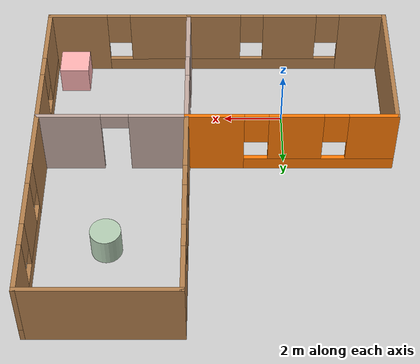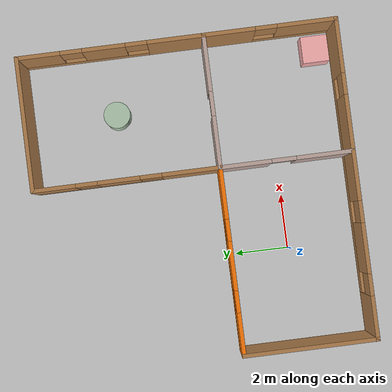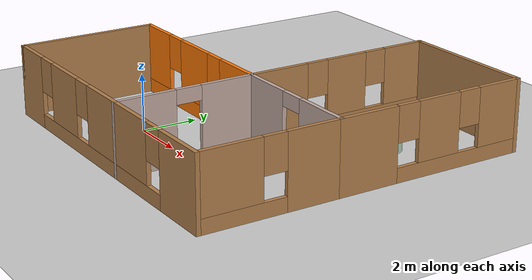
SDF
<sdf version="1.7">
 <world name="default">
  <light name="sun" type="directional">
   <pose>0 0 10 0 -0 0</pose>
   <diffuse>0.8 0.8 0.8 1</diffuse>
   <specular>0.2 0.2 0.2 1</specular>
   <attenuation>
    <range>1000</range>
    <constant>0.9</constant>
    <linear>0.01</linear>
    <quadratic>0.001</quadratic>
   </attenuation>
   <direction>-0.5 0.1 -0.9</direction>
   <spot><inner_angle>0</inner_angle><outer_angle>0</outer_angle><falloff>0</falloff></spot>
  </light>
  <model name="ground_plane">
   <static>1</static>
   <link name="link">
    <collision name="collision">
     <geometry><plane><normal>0 0 1</normal><size>100 100</size></plane></geometry>
     <surface>
      <contact><collide_bitmask>65535</collide_bitmask></contact>
      <friction><ode><mu>100</mu><mu2>50</mu2></ode></friction>
     </surface>
    </collision>
    <visual name="visual">
     <cast_shadows>0</cast_shadows>
     <geometry><plane><normal>0 0 1</normal><size>100 100</size></plane></geometry>
     <material>
      <script><uri>file://media/materials/scripts/gazebo.material</uri><name>Gazebo/Grey</name></script>
     </material>
    </visual>
   </link>
  </model>
  <gravity>0 0 -9.8</gravity>
  <magnetic_field>6e-06 2.3e-05 -4.2e-05</magnetic_field>
  <atmosphere type="adiabatic"/>
  <physics type="ode">
   <max_step_size>0.001</max_step_size>
   <real_time_factor>1</real_time_factor>
   <real_time_update_rate>1000</real_time_update_rate>
  </physics>
  <scene><ambient>0.4 0.4 0.4 1</ambient><background>0.7 0.7 0.7 1</background><shadows>1</shadows></scene>
  <spherical_coordinates>
   <surface_model>EARTH_WGS84</surface_model>
   <latitude_deg>0</latitude_deg>
   <longitude_deg>0</longitude_deg>
   <elevation>0</elevation>
   <heading_deg>0</heading_deg>
  </spherical_coordinates>
  <model name="home2">
   <pose>2.2501 3.23627 0 0 -0 0</pose>
   <link name="Wall_12">
    <pose>-2.425 -1 0 0 -0 3.14159</pose>
    <visual name="Wall_12_Visual_0">
     <pose>-2.52053 0 1.25 0 -0 0</pose>
     <geometry><box><size>1.95895 0.15 2.5</size></box></geometry>
     <material>
      <script><uri>file://media/materials/scripts/gazebo.material</uri><name>Gazebo/Grey</name></script>
      <ambient>0.996078 0.47451 0.0196078 1</ambient>
     </material>
     <meta><layer>0</layer></meta>
    </visual>
    <collision name="Wall_12_Collision_0">
     <geometry><box><size>1.95895 0.15 2.5</size></box></geometry>
     <pose>-2.52053 0 1.25 0 -0 0</pose>
    </collision>
    <visual name="Wall_12_Visual_1">
     <pose>0.979473 0 0.25 0 -0 0</pose>
     <geometry><box><size>5.04105 0.15 0.5</size></box></geometry>
     <material>
      <script><uri>file://media/materials/scripts/gazebo.material</uri><name>Gazebo/Grey</name></script>
      <ambient>0.996078 0.47451 0.0196078 1</ambient>
     </material>
     <meta><layer>0</layer></meta>
    </visual>
    <collision name="Wall_12_Collision_1">
     <geometry><box><size>5.04105 0.15 0.5</size></box></geometry>
     <pose>0.979473 0 0.25 0 -0 0</pose>
    </collision>
    <visual name="Wall_12_Visual_2">
     <pose>0.15903 0 1.5 0 -0 0</pose>
     <geometry><box><size>1.80017 0.15 2</size></box></geometry>
     <material>
      <script><uri>file://media/materials/scripts/gazebo.material</uri><name>Gazebo/Grey</name></script>
      <ambient>0.996078 0.47451 0.0196078 1</ambient>
     </material>
     <meta><layer>0</layer></meta>
    </visual>
    <collision name="Wall_12_Collision_2">
     <geometry><box><size>1.80017 0.15 2</size></box></geometry>
     <pose>0.15903 0 1.5 0 -0 0</pose>
    </collision>
    <visual name="Wall_12_Visual_3">
     <pose>2.67956 0 1.5 0 -0 0</pose>
     <geometry><box><size>1.64088 0.15 2</size></box></geometry>
     <material>
      <script><uri>file://media/materials/scripts/gazebo.material</uri><name>Gazebo/Grey</name></script>
      <ambient>0.996078 0.47451 0.0196078 1</ambient>
     </material>
     <meta><layer>0</layer></meta>
    </visual>
    <collision name="Wall_12_Collision_3">
     <geometry><box><size>1.64088 0.15 2</size></box></geometry>
     <pose>2.67956 0 1.5 0 -0 0</pose>
    </collision>
    <visual name="Wall_12_Visual_4">
     <pose>-1.14105 0 1.9 0 -0 0</pose>
     <geometry><box><size>0.8 0.15 1.2</size></box></geometry>
     <material>
      <script><uri>file://media/materials/scripts/gazebo.material</uri><name>Gazebo/Grey</name></script>
      <ambient>0.996078 0.47451 0.0196078 1</ambient>
     </material>
     <meta><layer>0</layer></meta>
    </visual>
    <collision name="Wall_12_Collision_4">
     <geometry><box><size>0.8 0.15 1.2</size></box></geometry>
     <pose>-1.14105 0 1.9 0 -0 0</pose>
    </collision>
    <visual name="Wall_12_Visual_5">
     <pose>1.45911 0 1.9 0 -0 0</pose>
     <geometry><box><size>0.8 0.15 1.2</size></box></geometry>
     <material>
      <script><uri>file://media/materials/scripts/gazebo.material</uri><name>Gazebo/Grey</name></script>
      <ambient>0.996078 0.47451 0.0196078 1</ambient>
     </material>
     <meta><layer>0</layer></meta>
    </visual>
    <collision name="Wall_12_Collision_5">
     <geometry><box><size>0.8 0.15 1.2</size></box></geometry>
     <pose>1.45911 0 1.9 0 -0 0</pose>
    </collision>
   </link>
   <link name="Wall_13">
    <collision name="Wall_13_Collision">
     <geometry><box><size>5 0.15 2.5</size></box></geometry>
     <pose>0 0 1.25 0 -0 0</pose>
    </collision>
    <visual name="Wall_13_Visual">
     <pose>0 0 1.25 0 -0 0</pose>
     <geometry><box><size>5 0.15 2.5</size></box></geometry>
     <material>
      <script><uri>file://media/materials/scripts/gazebo.material</uri><name>Gazebo/Wood</name></script>
      <ambient>0.996078 0.47451 0.0196078 1</ambient>
     </material>
     <meta><layer>0</layer></meta>
    </visual>
    <pose>-5.85 -3.425 0 0 -0 -1.5708</pose>
   </link>
   <link name="Wall_14">
    <pose>-2.425 -5.85 0 0 -0 0</pose>
    <visual name="Wall_14_Visual_0">
     <pose>-2.67956 0 1.25 0 -0 0</pose>
     <geometry><box><size>1.64088 0.15 2.5</size></box></geometry>
     <material>
      <script><uri>file://media/materials/scripts/gazebo.material</uri><name>Gazebo/Wood</name></script>
      <ambient>0.996078 0.47451 0.0196078 1</ambient>
     </material>
     <meta><layer>0</layer></meta>
    </visual>
    <collision name="Wall_14_Collision_0">
     <geometry><box><size>1.64088 0.15 2.5</size></box></geometry>
     <pose>-2.67956 0 1.25 0 -0 0</pose>
    </collision>
    <visual name="Wall_14_Visual_1">
     <pose>0.820442 0 0.25 0 -0 0</pose>
     <geometry><box><size>5.35912 0.15 0.5</size></box></geometry>
     <material>
      <script><uri>file://media/materials/scripts/gazebo.material</uri><name>Gazebo/Wood</name></script>
      <ambient>0.996078 0.47451 0.0196078 1</ambient>
     </material>
     <meta><layer>0</layer></meta>
    </visual>
    <collision name="Wall_14_Collision_1">
     <geometry><box><size>5.35912 0.15 0.5</size></box></geometry>
     <pose>0.820442 0 0.25 0 -0 0</pose>
    </collision>
    <visual name="Wall_14_Visual_2">
     <pose>-0.12844 0 1.5 0 -0 0</pose>
     <geometry><box><size>1.86135 0.15 2</size></box></geometry>
     <material>
      <script><uri>file://media/materials/scripts/gazebo.material</uri><name>Gazebo/Wood</name></script>
      <ambient>0.996078 0.47451 0.0196078 1</ambient>
     </material>
     <meta><layer>0</layer></meta>
    </visual>
    <collision name="Wall_14_Collision_2">
     <geometry><box><size>1.86135 0.15 2</size></box></geometry>
     <pose>-0.12844 0 1.5 0 -0 0</pose>
    </collision>
    <visual name="Wall_14_Visual_3">
     <pose>2.55112 0 1.5 0 -0 0</pose>
     <geometry><box><size>1.89776 0.15 2</size></box></geometry>
     <material>
      <script><uri>file://media/materials/scripts/gazebo.material</uri><name>Gazebo/Wood</name></script>
      <ambient>0.996078 0.47451 0.0196078 1</ambient>
     </material>
     <meta><layer>0</layer></meta>
    </visual>
    <collision name="Wall_14_Collision_3">
     <geometry><box><size>1.89776 0.15 2</size></box></geometry>
     <pose>2.55112 0 1.5 0 -0 0</pose>
    </collision>
    <visual name="Wall_14_Visual_4">
     <pose>-1.45911 0 1.9 0 -0 0</pose>
     <geometry><box><size>0.8 0.15 1.2</size></box></geometry>
     <material>
      <script><uri>file://media/materials/scripts/gazebo.material</uri><name>Gazebo/Wood</name></script>
      <ambient>0.996078 0.47451 0.0196078 1</ambient>
     </material>
     <meta><layer>0</layer></meta>
    </visual>
    <collision name="Wall_14_Collision_4">
     <geometry><box><size>0.8 0.15 1.2</size></box></geometry>
     <pose>-1.45911 0 1.9 0 -0 0</pose>
    </collision>
    <visual name="Wall_14_Visual_5">
     <pose>1.20223 0 1.9 0 -0 0</pose>
     <geometry><box><size>0.8 0.15 1.2</size></box></geometry>
     <material>
      <script><uri>file://media/materials/scripts/gazebo.material</uri><name>Gazebo/Wood</name></script>
      <ambient>0.996078 0.47451 0.0196078 1</ambient>
     </material>
     <meta><layer>0</layer></meta>
    </visual>
    <collision name="Wall_14_Collision_5">
     <geometry><box><size>0.8 0.15 1.2</size></box></geometry>
     <pose>1.20223 0 1.9 0 -0 0</pose>
    </collision>
   </link>
   <link name="Wall_17">
    <pose>1 -3.425 0 0 -0 1.5708</pose>
    <visual name="Wall_17_Visual_0">
     <pose>-1.42691 0 1.25 0 -0 0</pose>
     <geometry><box><size>2.14619 0.15 2.5</size></box></geometry>
     <material>
      <script><uri>file://media/materials/scripts/gazebo.material</uri><name>Gazebo/Grey</name></script>
      <ambient>0.760784 0.662745 0.627451 1</ambient>
     </material>
     <meta><layer>0</layer></meta>
    </visual>
    <collision name="Wall_17_Collision_0">
     <geometry><box><size>2.14619 0.15 2.5</size></box></geometry>
     <pose>-1.42691 0 1.25 0 -0 0</pose>
    </collision>
    <visual name="Wall_17_Visual_1">
     <pose>1.5231 0 1.25 0 -0 0</pose>
     <geometry><box><size>1.95381 0.15 2.5</size></box></geometry>
     <material>
      <script><uri>file://media/materials/scripts/gazebo.material</uri><name>Gazebo/Grey</name></script>
      <ambient>0.760784 0.662745 0.627451 1</ambient>
     </material>
     <meta><layer>0</layer></meta>
    </visual>
    <collision name="Wall_17_Collision_1">
     <geometry><box><size>1.95381 0.15 2.5</size></box></geometry>
     <pose>1.5231 0 1.25 0 -0 0</pose>
    </collision>
    <visual name="Wall_17_Visual_2">
     <pose>0.09619 0 2.25 0 -0 0</pose>
     <geometry><box><size>0.9 0.15 0.5</size></box></geometry>
     <material>
      <script><uri>file://media/materials/scripts/gazebo.material</uri><name>Gazebo/Grey</name></script>
      <ambient>0.760784 0.662745 0.627451 1</ambient>
     </material>
     <meta><layer>0</layer></meta>
    </visual>
    <collision name="Wall_17_Collision_2">
     <geometry><box><size>0.9 0.15 0.5</size></box></geometry>
     <pose>0.09619 0 2.25 0 -0 0</pose>
    </collision>
   </link>
   <link name="Wall_18">
    <pose>3.425 -1 0 0 -0 0</pose>
    <visual name="Wall_18_Visual_0">
     <pose>-1.51991 0 1.25 0 -0 0</pose>
     <geometry><box><size>1.96018 0.15 2.5</size></box></geometry>
     <material>
      <script><uri>file://media/materials/scripts/gazebo.material</uri><name>Gazebo/Grey</name></script>
      <ambient>0.760784 0.662745 0.627451 1</ambient>
     </material>
     <meta><layer>0</layer></meta>
    </visual>
    <collision name="Wall_18_Collision_0">
     <geometry><box><size>1.96018 0.15 2.5</size></box></geometry>
     <pose>-1.51991 0 1.25 0 -0 0</pose>
    </collision>
    <visual name="Wall_18_Visual_1">
     <pose>1.43009 0 1.25 0 -0 0</pose>
     <geometry><box><size>2.13982 0.15 2.5</size></box></geometry>
     <material>
      <script><uri>file://media/materials/scripts/gazebo.material</uri><name>Gazebo/Grey</name></script>
      <ambient>0.760784 0.662745 0.627451 1</ambient>
     </material>
     <meta><layer>0</layer></meta>
    </visual>
    <collision name="Wall_18_Collision_1">
     <geometry><box><size>2.13982 0.15 2.5</size></box></geometry>
     <pose>1.43009 0 1.25 0 -0 0</pose>
    </collision>
    <visual name="Wall_18_Visual_2">
     <pose>-0.089821 0 2.25 0 -0 0</pose>
     <geometry><box><size>0.9 0.15 0.5</size></box></geometry>
     <material>
      <script><uri>file://media/materials/scripts/gazebo.material</uri><name>Gazebo/Grey</name></script>
      <ambient>0.760784 0.662745 0.627451 1</ambient>
     </material>
     <meta><layer>0</layer></meta>
    </visual>
    <collision name="Wall_18_Collision_2">
     <geometry><box><size>0.9 0.15 0.5</size></box></geometry>
     <pose>-0.089821 0 2.25 0 -0 0</pose>
    </collision>
   </link>
   <link name="Wall_19">
    <pose>5.85 -3.425 0 0 -0 -1.5708</pose>
    <visual name="Wall_19_Visual_0">
     <pose>-1.51339 0 1.25 0 -0 0</pose>
     <geometry><box><size>1.97322 0.15 2.5</size></box></geometry>
     <material>
      <script><uri>file://media/materials/scripts/gazebo.material</uri><name>Gazebo/Wood</name></script>
      <ambient>0.760784 0.662745 0.627451 1</ambient>
     </material>
     <meta><layer>0</layer></meta>
    </visual>
    <collision name="Wall_19_Collision_0">
     <geometry><box><size>1.97322 0.15 2.5</size></box></geometry>
     <pose>-1.51339 0 1.25 0 -0 0</pose>
    </collision>
    <visual name="Wall_19_Visual_1">
     <pose>0.98661 0 0.25 0 -0 0</pose>
     <geometry><box><size>3.02678 0.15 0.5</size></box></geometry>
     <material>
      <script><uri>file://media/materials/scripts/gazebo.material</uri><name>Gazebo/Wood</name></script>
      <ambient>0.760784 0.662745 0.627451 1</ambient>
     </material>
     <meta><layer>0</layer></meta>
    </visual>
    <collision name="Wall_19_Collision_1">
     <geometry><box><size>3.02678 0.15 0.5</size></box></geometry>
     <pose>0.98661 0 0.25 0 -0 0</pose>
    </collision>
    <visual name="Wall_19_Visual_2">
     <pose>1.38661 0 1.5 0 -0 0</pose>
     <geometry><box><size>2.22678 0.15 2</size></box></geometry>
     <material>
      <script><uri>file://media/materials/scripts/gazebo.material</uri><name>Gazebo/Wood</name></script>
      <ambient>0.760784 0.662745 0.627451 1</ambient>
     </material>
     <meta><layer>0</layer></meta>
    </visual>
    <collision name="Wall_19_Collision_2">
     <geometry><box><size>2.22678 0.15 2</size></box></geometry>
     <pose>1.38661 0 1.5 0 -0 0</pose>
    </collision>
    <visual name="Wall_19_Visual_3">
     <pose>-0.12678 0 1.9 0 -0 0</pose>
     <geometry><box><size>0.8 0.15 1.2</size></box></geometry>
     <material>
      <script><uri>file://media/materials/scripts/gazebo.material</uri><name>Gazebo/Wood</name></script>
      <ambient>0.760784 0.662745 0.627451 1</ambient>
     </material>
     <meta><layer>0</layer></meta>
    </visual>
    <collision name="Wall_19_Collision_3">
     <geometry><box><size>0.8 0.15 1.2</size></box></geometry>
     <pose>-0.12678 0 1.9 0 -0 0</pose>
    </collision>
   </link>
   <link name="Wall_20">
    <pose>3.425 -5.85 0 0 -0 3.14159</pose>
    <visual name="Wall_20_Visual_0">
     <pose>-1.46627 0 1.25 0 -0 0</pose>
     <geometry><box><size>2.06746 0.15 2.5</size></box></geometry>
     <material>
      <script><uri>file://media/materials/scripts/gazebo.material</uri><name>Gazebo/Wood</name></script>
      <ambient>1 0.764706 0.305882 1</ambient>
     </material>
     <meta><layer>0</layer></meta>
    </visual>
    <collision name="Wall_20_Collision_0">
     <geometry><box><size>2.06746 0.15 2.5</size></box></geometry>
     <pose>-1.46627 0 1.25 0 -0 0</pose>
    </collision>
    <visual name="Wall_20_Visual_1">
     <pose>1.03373 0 0.25 0 -0 0</pose>
     <geometry><box><size>2.93254 0.15 0.5</size></box></geometry>
     <material>
      <script><uri>file://media/materials/scripts/gazebo.material</uri><name>Gazebo/Wood</name></script>
      <ambient>1 0.764706 0.305882 1</ambient>
     </material>
     <meta><layer>0</layer></meta>
    </visual>
    <collision name="Wall_20_Collision_1">
     <geometry><box><size>2.93254 0.15 0.5</size></box></geometry>
     <pose>1.03373 0 0.25 0 -0 0</pose>
    </collision>
    <visual name="Wall_20_Visual_2">
     <pose>1.43373 0 1.5 0 -0 0</pose>
     <geometry><box><size>2.13254 0.15 2</size></box></geometry>
     <material>
      <script><uri>file://media/materials/scripts/gazebo.material</uri><name>Gazebo/Wood</name></script>
      <ambient>1 0.764706 0.305882 1</ambient>
     </material>
     <meta><layer>0</layer></meta>
    </visual>
    <collision name="Wall_20_Collision_2">
     <geometry><box><size>2.13254 0.15 2</size></box></geometry>
     <pose>1.43373 0 1.5 0 -0 0</pose>
    </collision>
    <visual name="Wall_20_Visual_3">
     <pose>-0.03254 0 1.9 0 -0 0</pose>
     <geometry><box><size>0.8 0.15 1.2</size></box></geometry>
     <material>
      <script><uri>file://media/materials/scripts/gazebo.material</uri><name>Gazebo/Wood</name></script>
      <ambient>1 0.764706 0.305882 1</ambient>
     </material>
     <meta><layer>0</layer></meta>
    </visual>
    <collision name="Wall_20_Collision_3">
     <geometry><box><size>0.8 0.15 1.2</size></box></geometry>
     <pose>-0.03254 0 1.9 0 -0 0</pose>
    </collision>
   </link>
   <link name="Wall_22">
    <pose>5.85 2.425 0 0 -0 1.5708</pose>
    <visual name="Wall_22_Visual_0">
     <pose>-2.42557 0 1.25 0 -0 0</pose>
     <geometry><box><size>2.14886 0.15 2.5</size></box></geometry>
     <material>
      <script><uri>file://media/materials/scripts/gazebo.material</uri><name>Gazebo/Wood</name></script>
      <ambient>0.921569 0.807843 0.615686 1</ambient>
     </material>
     <meta><layer>0</layer></meta>
    </visual>
    <collision name="Wall_22_Collision_0">
     <geometry><box><size>2.14886 0.15 2.5</size></box></geometry>
     <pose>-2.42557 0 1.25 0 -0 0</pose>
    </collision>
    <visual name="Wall_22_Visual_1">
     <pose>1.07443 0 0.25 0 -0 0</pose>
     <geometry><box><size>4.85114 0.15 0.5</size></box></geometry>
     <material>
      <script><uri>file://media/materials/scripts/gazebo.material</uri><name>Gazebo/Wood</name></script>
      <ambient>0.921569 0.807843 0.615686 1</ambient>
     </material>
     <meta><layer>0</layer></meta>
    </visual>
    <collision name="Wall_22_Collision_1">
     <geometry><box><size>4.85114 0.15 0.5</size></box></geometry>
     <pose>1.07443 0 0.25 0 -0 0</pose>
    </collision>
    <visual name="Wall_22_Visual_2">
     <pose>0.241875 0 1.5 0 -0 0</pose>
     <geometry><box><size>1.58604 0.15 2</size></box></geometry>
     <material>
      <script><uri>file://media/materials/scripts/gazebo.material</uri><name>Gazebo/Wood</name></script>
      <ambient>0.921569 0.807843 0.615686 1</ambient>
     </material>
     <meta><layer>0</layer></meta>
    </visual>
    <collision name="Wall_22_Collision_2">
     <geometry><box><size>1.58604 0.15 2</size></box></geometry>
     <pose>0.241875 0 1.5 0 -0 0</pose>
    </collision>
    <visual name="Wall_22_Visual_3">
     <pose>2.66745 0 1.5 0 -0 0</pose>
     <geometry><box><size>1.66511 0.15 2</size></box></geometry>
     <material>
      <script><uri>file://media/materials/scripts/gazebo.material</uri><name>Gazebo/Wood</name></script>
      <ambient>0.921569 0.807843 0.615686 1</ambient>
     </material>
     <meta><layer>0</layer></meta>
    </visual>
    <collision name="Wall_22_Collision_3">
     <geometry><box><size>1.66511 0.15 2</size></box></geometry>
     <pose>2.66745 0 1.5 0 -0 0</pose>
    </collision>
    <visual name="Wall_22_Visual_4">
     <pose>-0.951144 0 1.9 0 -0 0</pose>
     <geometry><box><size>0.8 0.15 1.2</size></box></geometry>
     <material>
      <script><uri>file://media/materials/scripts/gazebo.material</uri><name>Gazebo/Wood</name></script>
      <ambient>0.921569 0.807843 0.615686 1</ambient>
     </material>
     <meta><layer>0</layer></meta>
    </visual>
    <collision name="Wall_22_Collision_4">
     <geometry><box><size>0.8 0.15 1.2</size></box></geometry>
     <pose>-0.951144 0 1.9 0 -0 0</pose>
    </collision>
    <visual name="Wall_22_Visual_5">
     <pose>1.43489 0 1.9 0 -0 0</pose>
     <geometry><box><size>0.8 0.15 1.2</size></box></geometry>
     <material>
      <script><uri>file://media/materials/scripts/gazebo.material</uri><name>Gazebo/Wood</name></script>
      <ambient>0.921569 0.807843 0.615686 1</ambient>
     </material>
     <meta><layer>0</layer></meta>
    </visual>
    <collision name="Wall_22_Collision_5">
     <geometry><box><size>0.8 0.15 1.2</size></box></geometry>
     <pose>1.43489 0 1.9 0 -0 0</pose>
    </collision>
   </link>
   <link name="Wall_24">
    <collision name="Wall_24_Collision">
     <geometry><box><size>5 0.15 2.5</size></box></geometry>
     <pose>0 0 1.25 0 -0 0</pose>
    </collision>
    <visual name="Wall_24_Visual">
     <pose>0 0 1.25 0 -0 0</pose>
     <geometry><box><size>5 0.15 2.5</size></box></geometry>
     <material>
      <script><uri>file://media/materials/scripts/gazebo.material</uri><name>Gazebo/Wood</name></script>
      <ambient>0.921569 0.807843 0.615686 1</ambient>
     </material>
     <meta><layer>0</layer></meta>
    </visual>
    <pose>3.425 5.85 0 0 -0 3.14159</pose>
   </link>
   <link name="Wall_29">
    <pose>1 2.425 0 0 -0 1.5708</pose>
    <visual name="Wall_29_Visual_0">
     <pose>-2.39498 0 1.25 0 -0 0</pose>
     <geometry><box><size>2.21004 0.15 2.5</size></box></geometry>
     <material>
      <script><uri>file://media/materials/scripts/gazebo.material</uri><name>Gazebo/Wood</name></script>
      <ambient>0.921569 0.807843 0.615686 1</ambient>
     </material>
     <meta><layer>0</layer></meta>
    </visual>
    <collision name="Wall_29_Collision_0">
     <geometry><box><size>2.21004 0.15 2.5</size></box></geometry>
     <pose>-2.39498 0 1.25 0 -0 0</pose>
    </collision>
    <visual name="Wall_29_Visual_1">
     <pose>1.10502 0 0.25 0 -0 0</pose>
     <geometry><box><size>4.78996 0.15 0.5</size></box></geometry>
     <material>
      <script><uri>file://media/materials/scripts/gazebo.material</uri><name>Gazebo/Wood</name></script>
      <ambient>0.921569 0.807843 0.615686 1</ambient>
     </material>
     <meta><layer>0</layer></meta>
    </visual>
    <collision name="Wall_29_Collision_1">
     <geometry><box><size>4.78996 0.15 0.5</size></box></geometry>
     <pose>1.10502 0 0.25 0 -0 0</pose>
    </collision>
    <visual name="Wall_29_Visual_2">
     <pose>0.28776 0 1.5 0 -0 0</pose>
     <geometry><box><size>1.55545 0.15 2</size></box></geometry>
     <material>
      <script><uri>file://media/materials/scripts/gazebo.material</uri><name>Gazebo/Wood</name></script>
      <ambient>0.921569 0.807843 0.615686 1</ambient>
     </material>
     <meta><layer>0</layer></meta>
    </visual>
    <collision name="Wall_29_Collision_2">
     <geometry><box><size>1.55545 0.15 2</size></box></geometry>
     <pose>0.28776 0 1.5 0 -0 0</pose>
    </collision>
    <visual name="Wall_29_Visual_3">
     <pose>2.68274 0 1.5 0 -0 0</pose>
     <geometry><box><size>1.63452 0.15 2</size></box></geometry>
     <material>
      <script><uri>file://media/materials/scripts/gazebo.material</uri><name>Gazebo/Wood</name></script>
      <ambient>0.921569 0.807843 0.615686 1</ambient>
     </material>
     <meta><layer>0</layer></meta>
    </visual>
    <collision name="Wall_29_Collision_3">
     <geometry><box><size>1.63452 0.15 2</size></box></geometry>
     <pose>2.68274 0 1.5 0 -0 0</pose>
    </collision>
    <visual name="Wall_29_Visual_4">
     <pose>-0.889964 0 1.9 0 -0 0</pose>
     <geometry><box><size>0.8 0.15 1.2</size></box></geometry>
     <material>
      <script><uri>file://media/materials/scripts/gazebo.material</uri><name>Gazebo/Wood</name></script>
      <ambient>0.921569 0.807843 0.615686 1</ambient>
     </material>
     <meta><layer>0</layer></meta>
    </visual>
    <collision name="Wall_29_Collision_4">
     <geometry><box><size>0.8 0.15 1.2</size></box></geometry>
     <pose>-0.889964 0 1.9 0 -0 0</pose>
    </collision>
    <visual name="Wall_29_Visual_5">
     <pose>1.46548 0 1.9 0 -0 0</pose>
     <geometry><box><size>0.8 0.15 1.2</size></box></geometry>
     <material>
      <script><uri>file://media/materials/scripts/gazebo.material</uri><name>Gazebo/Wood</name></script>
      <ambient>0.921569 0.807843 0.615686 1</ambient>
     </material>
     <meta><layer>0</layer></meta>
    </visual>
    <collision name="Wall_29_Collision_5">
     <geometry><box><size>0.8 0.15 1.2</size></box></geometry>
     <pose>1.46548 0 1.9 0 -0 0</pose>
    </collision>
   </link>
   <static>1</static>
  </model>
  <model name="red_unit_box">
   <link name="link">
    <inertial>
     <mass>1</mass>
     <inertia>
      <ixx>0.166667</ixx>
      <ixy>0</ixy>
      <ixz>0</ixz>
      <iyy>0.166667</iyy>
      <iyz>0</iyz>
      <izz>0.166667</izz>
     </inertia>
    </inertial>
    <visual name="visual">
     <geometry><box><size>1 1 1</size></box></geometry>
     <material>
      <script><name>Gazebo/Grey</name><uri>file://media/materials/scripts/gazebo.material</uri></script>
      <shader type="pixel"><normal_map>__default__</normal_map></shader>
      <ambient>1 0 0 0</ambient>
      <diffuse>1 0.7 0.7 1</diffuse>
      <specular>1 0.01 0.01 1</specular>
      <emissive>0 0 0 1</emissive>
     </material>
    </visual>
    <collision name="collision">
     <geometry><box><size>1 1 1</size></box></geometry>
     <surface>
      <friction>
       <ode><mu>1</mu><mu2>1</mu2><fdir1>0 0 0</fdir1><slip1>0</slip1><slip2>0</slip2></ode>
       <torsional>
        <coefficient>1</coefficient>
        <patch_radius>0</patch_radius>
        <surface_radius>0</surface_radius>
        <use_patch_radius>1</use_patch_radius>
        <ode><slip>0</slip></ode>
       </torsional>
      </friction>
      <bounce><restitution_coefficient>0</restitution_coefficient><threshold>1e+06</threshold></bounce>
      <contact>
       <collide_without_contact>0</collide_without_contact>
       <collide_without_contact_bitmask>1</collide_without_contact_bitmask>
       <collide_bitmask>1</collide_bitmask>
       <ode>
        <soft_cfm>0</soft_cfm>
        <soft_erp>0.2</soft_erp>
        <kp>1e+13</kp>
        <kd>1</kd>
        <max_vel>0.01</max_vel>
        <min_depth>0</min_depth>
       </ode>
       <bullet>
        <split_impulse>1</split_impulse>
        <split_impulse_penetration_threshold>-0.01</split_impulse_penetration_threshold>
        <soft_cfm>0</soft_cfm>
        <soft_erp>0.2</soft_erp>
        <kp>1e+13</kp>
        <kd>1</kd>
       </bullet>
      </contact>
     </surface>
    </collision>
   </link>
   <static>0</static>
   <pose>7.30795 -1.89945 0.5 0 -0 0</pose>
  </model>
  <model name="lightgreen_unit_cylinder">
   <link name="link">
    <inertial>
     <mass>1</mass>
     <inertia><ixx>0.145833</ixx><ixy>0</ixy><ixz>0</ixz><iyy>0.145833</iyy><iyz>0</iyz><izz>0.125</izz></inertia>
    </inertial>
    <visual name="visual">
     <geometry><cylinder><radius>0.5</radius><length>1</length></cylinder></geometry>
     <material>
      <script><name>Gazebo/Grey</name><uri>file://media/materials/scripts/gazebo.material</uri></script>
      <shader type="pixel"><normal_map>__default__</normal_map></shader>
      <ambient>0 1 0 0</ambient>
      <diffuse>0.7 0.8 0.7 1</diffuse>
      <specular>0.01 0.01 0.01 1</specular>
      <emissive>0 0 0 1</emissive>
     </material>
    </visual>
    <collision name="collision">
     <geometry><cylinder><radius>0.5</radius><length>1</length></cylinder></geometry>
     <surface>
      <friction>
       <ode><mu>1</mu><mu2>1</mu2><fdir1>0 0 0</fdir1><slip1>0</slip1><slip2>0</slip2></ode>
       <torsional>
        <coefficient>1</coefficient>
        <patch_radius>0</patch_radius>
        <surface_radius>0</surface_radius>
        <use_patch_radius>1</use_patch_radius>
        <ode><slip>0</slip></ode>
       </torsional>
      </friction>
      <bounce><restitution_coefficient>0</restitution_coefficient><threshold>1e+06</threshold></bounce>
      <contact>
       <collide_without_contact>0</collide_without_contact>
       <collide_without_contact_bitmask>1</collide_without_contact_bitmask>
       <collide_bitmask>1</collide_bitmask>
       <ode>
        <soft_cfm>0</soft_cfm>
        <soft_erp>0.2</soft_erp>
        <kp>1e+13</kp>
        <kd>1</kd>
        <max_vel>0.01</max_vel>
        <min_depth>0</min_depth>
       </ode>
       <bullet>
        <split_impulse>1</split_impulse>
        <split_impulse_penetration_threshold>-0.01</split_impulse_penetration_threshold>
        <soft_cfm>0</soft_cfm>
        <soft_erp>0.2</soft_erp>
        <kp>1e+13</kp>
        <kd>1</kd>
       </bullet>
      </contact>
     </surface>
    </collision>
   </link>
   <static>0</static>
   <pose>5.7646 5.80069 0.5 0 -0 0</pose>
  </model>
 </world>
</sdf>
